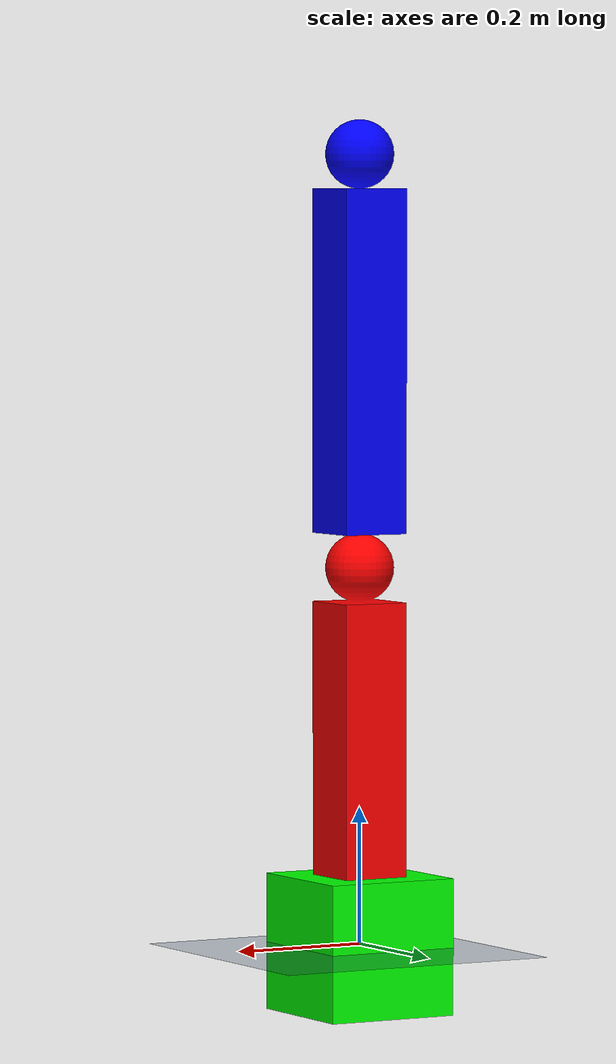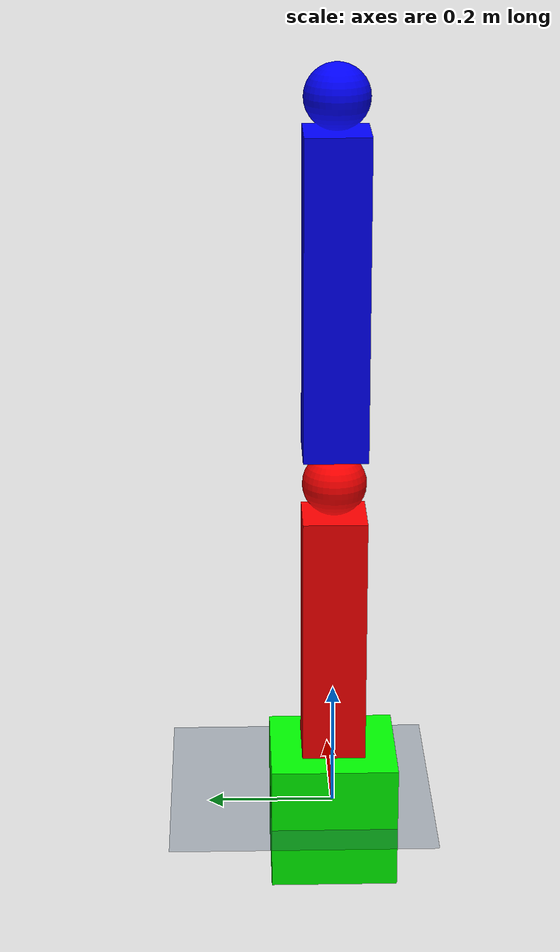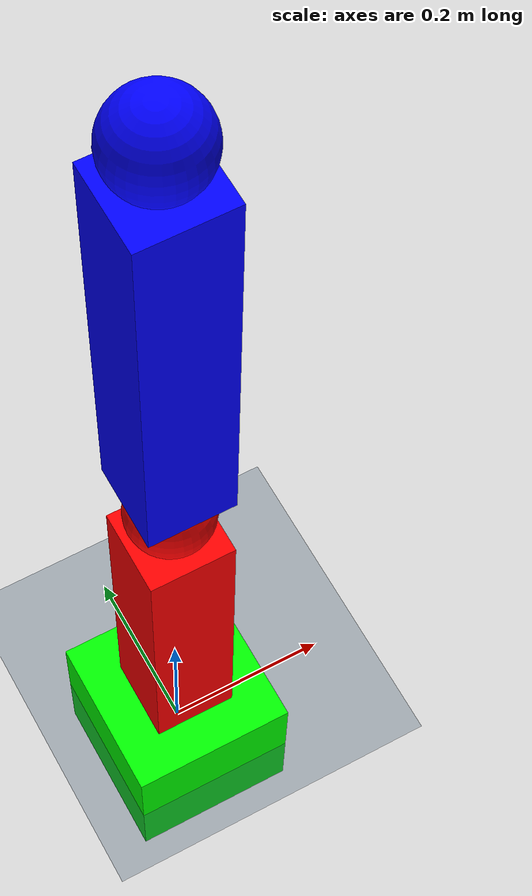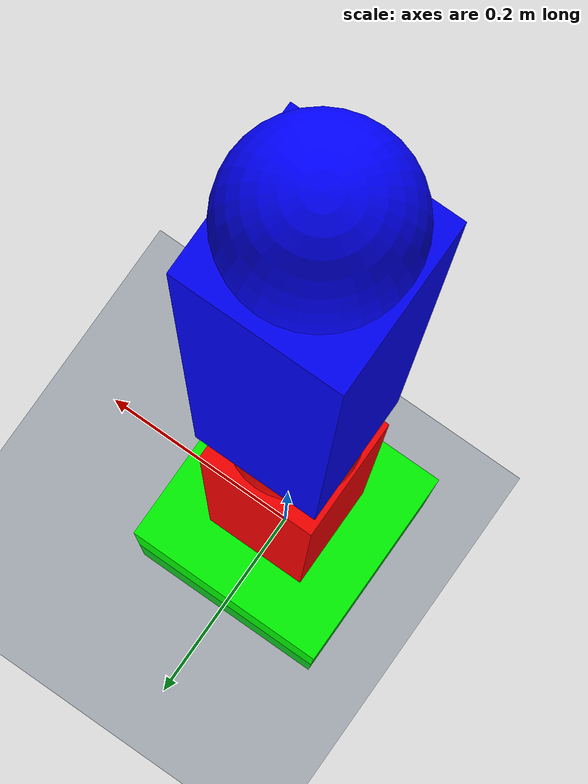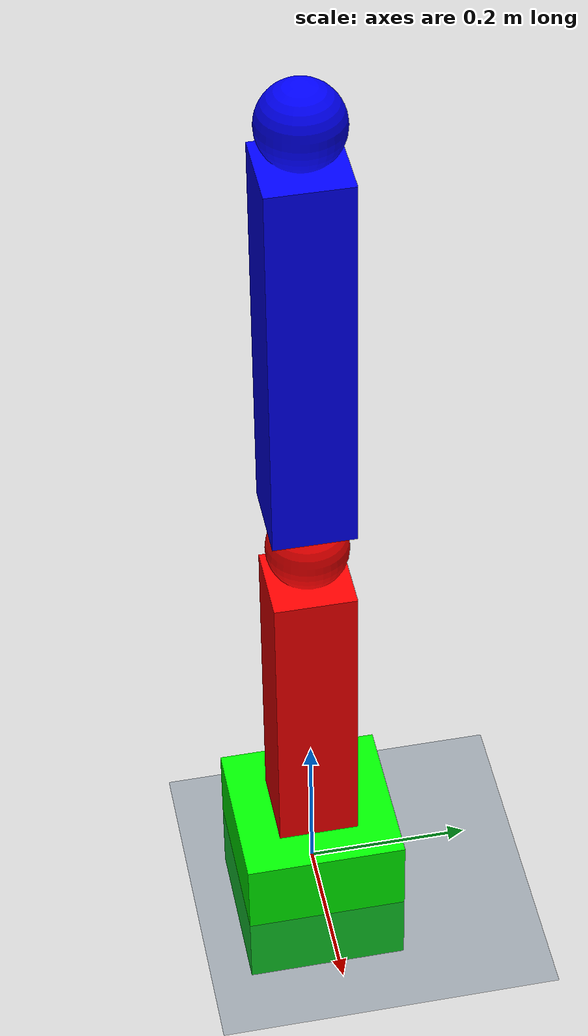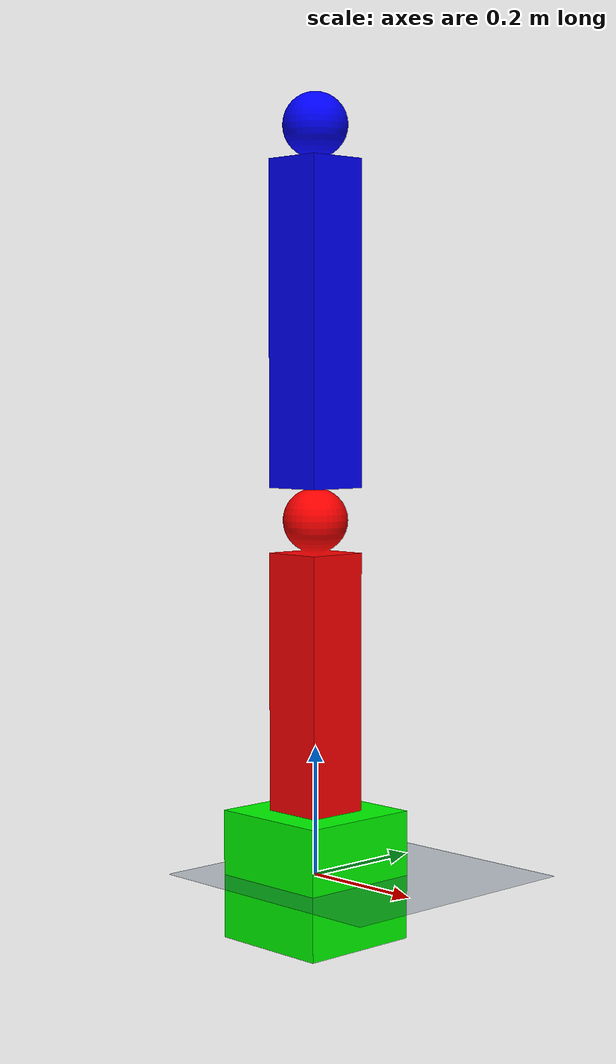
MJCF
<mujoco model="scene">
  <include file="simple_chain.xml"/>

  <visual>
   <headlight diffuse="0.6 0.6 0.6" ambient="0.3 0.3 0.3" specular="0 0 0"/>
   <rgba haze="0.15 0.25 0.35 1"/>
   <global azimuth="120" elevation="-20"/>
  </visual>

  <asset>
    <texture type="skybox" builtin="gradient" rgb1="0.3 0.5 0.7" rgb2="0 0 0" width="512" height="3072"/>
    <texture type="2d" name="groundplane" builtin="checker" mark="edge" rgb1="0.2 0.3 0.4" rgb2="0.1 0.2 0.3" markrgb="0.8 0.8 0.8" width="300" height="300"/>
    <material name="groundplane" texture="groundplane" texuniform="true" texrepeat="5 5" reflectance="0.2"/>
   </asset>

   <worldbody>
     <light pos="0 0 1.5" dir="0 0 -1" directional="true"/>
     <geom name="floor" size="0 0 0.05" type="plane" material="groundplane"/>
   </worldbody>
</mujoco>

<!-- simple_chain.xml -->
<mujoco model="simple_chain">
  <compiler angle="radian"/>
  <option collision="predefined"/>
  <option gravity="0 0 0"/>

  <asset>
    <mesh file="ball-joint.stl"/>
    <mesh file="hand.stl"/>
  </asset>
  <worldbody>
   <body name="base" pos="0 0 0.0">
     <geom name="base" type="box" size="0.1 0.1 0.1" mass="1" rgba="0 1 0 1"/>
     <body name="link1" pos="0 0 0.0">
       <geom name="link1" type="mesh" mesh="ball-joint" mass="1" rgba="1 0 0 1"/>
       <joint name="joint1" type="hinge" axis="1 0 0" limited="true" range="-3.14 3.14"/>
       <body name="link2" pos="0 0 0.6">
         <geom name="link2" type="mesh" mesh="ball-joint" mass="1" rgba="0 0 1 1"/>
         <joint name="joint2" type="hinge" axis="1 0 0" limited="true" range="-3.14 3.14"/>
       </body>
     </body>
   </body>
 </worldbody>

   <actuator>
     <position name="pos_joint1" joint="joint1" kp="1"  ctrllimited="true" ctrlrange="-100 100"/>
     <position name="pos_joint2" joint="joint2" kp="0.5" ctrllimited="true" ctrlrange="-100 100"/>
   </actuator>
</mujoco>
